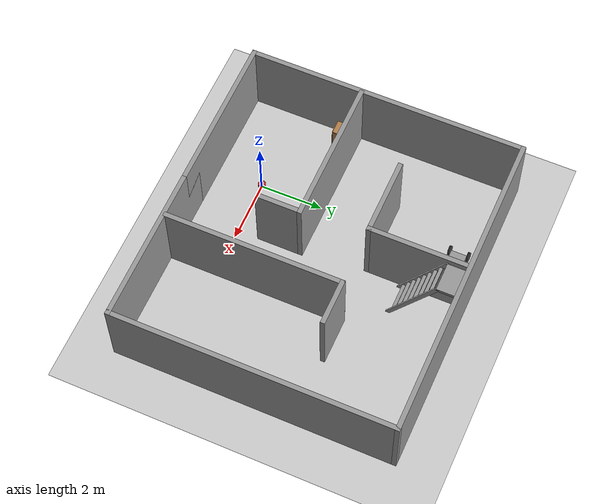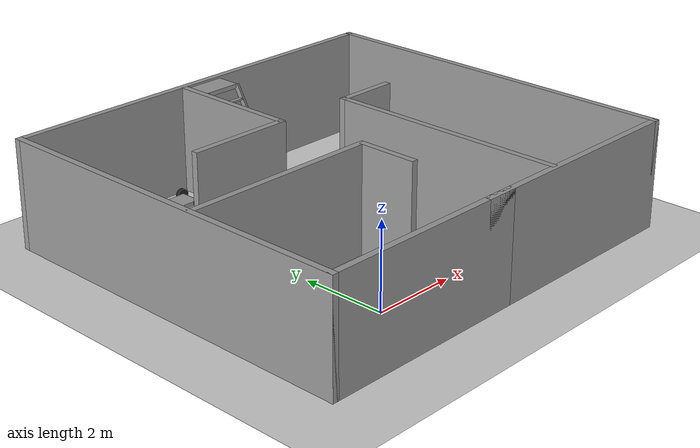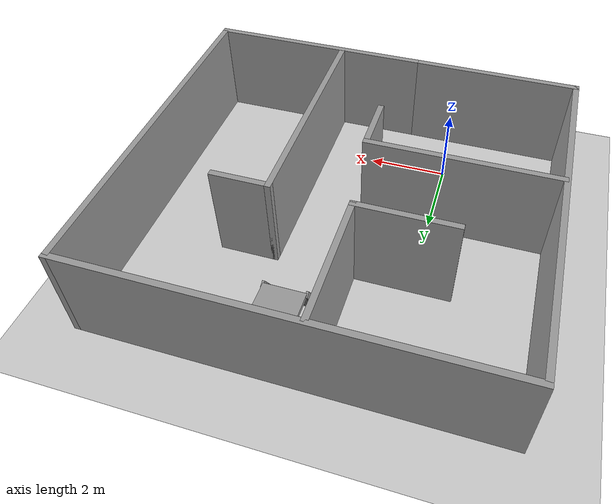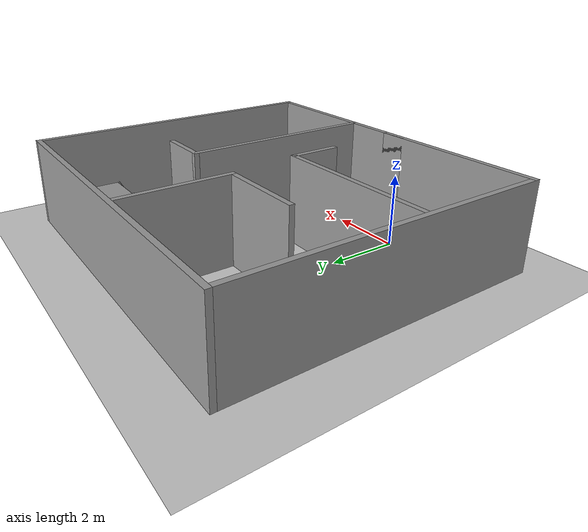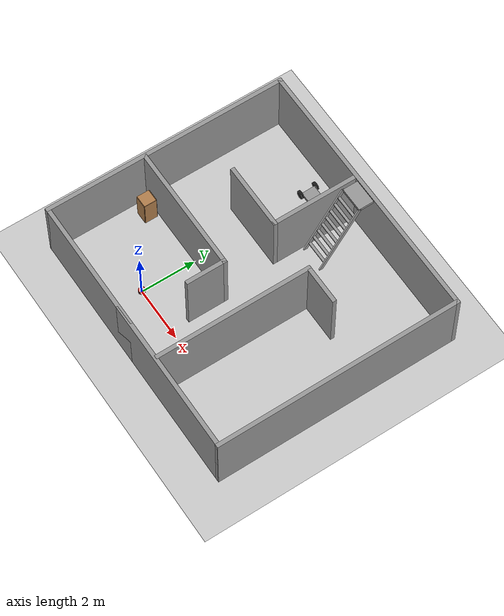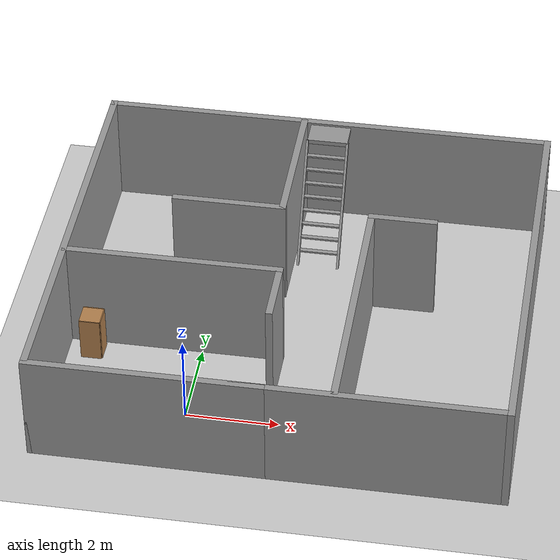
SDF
<sdf version="1.7">
 <world name="default">
  <light name="sun" type="directional">
   <pose>0 0 10 0 -0 0</pose>
   <diffuse>0.8 0.8 0.8 1</diffuse>
   <specular>0.2 0.2 0.2 1</specular>
   <attenuation>
    <range>1000</range>
    <constant>0.9</constant>
    <linear>0.01</linear>
    <quadratic>0.001</quadratic>
   </attenuation>
   <direction>-0.5 0.1 -0.9</direction>
   <spot><inner_angle>0</inner_angle><outer_angle>0</outer_angle><falloff>0</falloff></spot>
  </light>
  <model name="ground_plane">
   <static>1</static>
   <link name="link">
    <collision name="collision">
     <geometry><plane><normal>0 0 1</normal><size>100 100</size></plane></geometry>
     <surface><friction><ode><mu>100</mu><mu2>50</mu2></ode></friction></surface>
    </collision>
    <visual name="visual">
     <cast_shadows>0</cast_shadows>
     <geometry><plane><normal>0 0 1</normal><size>100 100</size></plane></geometry>
     <material>
      <script><uri>file://media/materials/scripts/gazebo.material</uri><name>Gazebo/Grey</name></script>
     </material>
    </visual>
   </link>
  </model>
  <gravity>0 0 -9.8</gravity>
  <magnetic_field>6e-06 2.3e-05 -4.2e-05</magnetic_field>
  <atmosphere type="adiabatic"/>
  <physics type="ode">
   <max_step_size>0.001</max_step_size>
   <real_time_factor>1</real_time_factor>
   <real_time_update_rate>1000</real_time_update_rate>
  </physics>
  <scene><ambient>0.4 0.4 0.4 1</ambient><background>0.7 0.7 0.7 1</background><shadows>1</shadows></scene>
  <audio><device>default</device></audio>
  <spherical_coordinates>
   <surface_model>EARTH_WGS84</surface_model>
   <latitude_deg>0</latitude_deg>
   <longitude_deg>0</longitude_deg>
   <elevation>0</elevation>
   <heading_deg>0</heading_deg>
  </spherical_coordinates>
  <model name="room">
   <pose>1.96627 2.88471 0 0 -0 0</pose>
   <link name="Wall_0">
    <collision name="Wall_0_Collision">
     <geometry><box><size>5.75 0.15 2.5</size></box></geometry>
     <pose>0 0 1.25 0 -0 0</pose>
    </collision>
    <visual name="Wall_0_Visual">
     <pose>0 0 1.25 0 -0 0</pose>
     <geometry><box><size>5.75 0.15 2.5</size></box></geometry>
     <material>
      <script><uri>file://media/materials/scripts/gazebo.material</uri><name>Gazebo/Grey</name></script>
      <ambient>1 1 1 1</ambient>
     </material>
     <meta><layer>0</layer></meta>
    </visual>
    <pose>2.125 -4.425 0 0 -0 0</pose>
   </link>
   <link name="Wall_1">
    <collision name="Wall_1_Collision">
     <geometry><box><size>9 0.15 2.5</size></box></geometry>
     <pose>0 0 1.25 0 -0 0</pose>
    </collision>
    <visual name="Wall_1_Visual">
     <pose>0 0 1.25 0 -0 0</pose>
     <geometry><box><size>9 0.15 2.5</size></box></geometry>
     <material>
      <script><uri>file://media/materials/scripts/gazebo.material</uri><name>Gazebo/Grey</name></script>
      <ambient>1 1 1 1</ambient>
     </material>
     <meta><layer>0</layer></meta>
    </visual>
    <pose>4.925 -0 0 0 -0 1.5708</pose>
   </link>
   <link name="Wall_10">
    <collision name="Wall_10_Collision">
     <geometry><box><size>1.5 0.15 2.5</size></box></geometry>
     <pose>0 0 1.25 0 -0 0</pose>
    </collision>
    <visual name="Wall_10_Visual">
     <pose>0 0 1.25 0 -0 0</pose>
     <geometry><box><size>1.5 0.15 2.5</size></box></geometry>
     <material>
      <script><uri>file://media/materials/scripts/gazebo.material</uri><name>Gazebo/Grey</name></script>
      <ambient>1 1 1 1</ambient>
     </material>
     <meta><layer>0</layer></meta>
    </visual>
    <pose>-0.274674 -1.47923 0 0 -0 -1.5708</pose>
   </link>
   <link name="Wall_12">
    <collision name="Wall_12_Collision">
     <geometry><box><size>5.75 0.15 2.5</size></box></geometry>
     <pose>0 0 1.25 0 -0 0</pose>
    </collision>
    <visual name="Wall_12_Visual">
     <pose>0 0 1.25 0 -0 0</pose>
     <geometry><box><size>5.75 0.15 2.5</size></box></geometry>
     <material>
      <script><uri>file://media/materials/scripts/gazebo.material</uri><name>Gazebo/Grey</name></script>
      <ambient>1 1 1 1</ambient>
     </material>
     <meta><layer>0</layer></meta>
    </visual>
    <pose>1.39594 -1.54099 0 0 -0 -1.5708</pose>
   </link>
   <link name="Wall_14">
    <collision name="Wall_14_Collision">
     <geometry><box><size>1.5 0.15 2.5</size></box></geometry>
     <pose>0 0 1.25 0 -0 0</pose>
    </collision>
    <visual name="Wall_14_Visual">
     <pose>0 0 1.25 0 -0 0</pose>
     <geometry><box><size>1.5 0.15 2.5</size></box></geometry>
     <material>
      <script><uri>file://media/materials/scripts/gazebo.material</uri><name>Gazebo/Grey</name></script>
      <ambient>1 1 1 1</ambient>
     </material>
     <meta><layer>0</layer></meta>
    </visual>
    <pose>2.07094 1.25901 0 0 -0 0</pose>
   </link>
   <link name="Wall_2">
    <collision name="Wall_2_Collision">
     <geometry><box><size>10 0.15 2.5</size></box></geometry>
     <pose>0 0 1.25 0 -0 0</pose>
    </collision>
    <visual name="Wall_2_Visual">
     <pose>0 0 1.25 0 -0 0</pose>
     <geometry><box><size>10 0.15 2.5</size></box></geometry>
     <material>
      <script><uri>file://media/materials/scripts/gazebo.material</uri><name>Gazebo/Grey</name></script>
      <ambient>1 1 1 1</ambient>
     </material>
     <meta><layer>0</layer></meta>
    </visual>
    <pose>0 4.425 0 0 -0 3.14159</pose>
   </link>
   <link name="Wall_3">
    <collision name="Wall_3_Collision">
     <geometry><box><size>9 0.15 2.5</size></box></geometry>
     <pose>0 0 1.25 0 -0 0</pose>
    </collision>
    <visual name="Wall_3_Visual">
     <pose>0 0 1.25 0 -0 0</pose>
     <geometry><box><size>9 0.15 2.5</size></box></geometry>
     <material>
      <script><uri>file://media/materials/scripts/gazebo.material</uri><name>Gazebo/Grey</name></script>
      <ambient>1 1 1 1</ambient>
     </material>
     <meta><layer>0</layer></meta>
    </visual>
    <pose>-4.925 -0 0 0 -0 -1.5708</pose>
   </link>
   <link name="Wall_4">
    <collision name="Wall_4_Collision">
     <geometry><box><size>5 0.15 2.5</size></box></geometry>
     <pose>0 0 1.25 0 -0 0</pose>
    </collision>
    <visual name="Wall_4_Visual">
     <pose>0 0 1.25 0 -0 0</pose>
     <geometry><box><size>5 0.15 2.5</size></box></geometry>
     <material>
      <script><uri>file://media/materials/scripts/gazebo.material</uri><name>Gazebo/Grey</name></script>
      <ambient>1 1 1 1</ambient>
     </material>
     <meta><layer>0</layer></meta>
    </visual>
    <pose>-2.5 -4.425 0 0 -0 0</pose>
   </link>
   <link name="Wall_6">
    <collision name="Wall_6_Collision">
     <geometry><box><size>3.25 0.15 2.5</size></box></geometry>
     <pose>0 0 1.25 0 -0 0</pose>
    </collision>
    <visual name="Wall_6_Visual">
     <pose>0 0 1.25 0 -0 0</pose>
     <geometry><box><size>3.25 0.15 2.5</size></box></geometry>
     <material>
      <script><uri>file://media/materials/scripts/gazebo.material</uri><name>Gazebo/Grey</name></script>
      <ambient>1 1 1 1</ambient>
     </material>
     <meta><layer>0</layer></meta>
    </visual>
    <pose>-0.545927 2.82409 0 0 -0 -1.5708</pose>
   </link>
   <link name="Wall_7">
    <collision name="Wall_7_Collision">
     <geometry><box><size>2.5 0.15 2.5</size></box></geometry>
     <pose>0 0 1.25 0 -0 0</pose>
    </collision>
    <visual name="Wall_7_Visual">
     <pose>0 0 1.25 0 -0 0</pose>
     <geometry><box><size>2.5 0.15 2.5</size></box></geometry>
     <material>
      <script><uri>file://media/materials/scripts/gazebo.material</uri><name>Gazebo/Grey</name></script>
      <ambient>1 1 1 1</ambient>
     </material>
     <meta><layer>0</layer></meta>
    </visual>
    <pose>-1.72093 1.27409 0 0 -0 3.14159</pose>
   </link>
   <link name="Wall_9">
    <collision name="Wall_9_Collision">
     <geometry><box><size>4.75 0.15 2.5</size></box></geometry>
     <pose>0 0 1.25 0 -0 0</pose>
    </collision>
    <visual name="Wall_9_Visual">
     <pose>0 0 1.25 0 -0 0</pose>
     <geometry><box><size>4.75 0.15 2.5</size></box></geometry>
     <material>
      <script><uri>file://media/materials/scripts/gazebo.material</uri><name>Gazebo/Grey</name></script>
      <ambient>1 1 1 1</ambient>
     </material>
     <meta><layer>0</layer></meta>
    </visual>
    <pose>-2.57467 -0.804225 0 0 -0 0</pose>
   </link>
   <static>1</static>
  </model>
  <model name="fishbot">
   <link name="base_footprint">
    <inertial>
     <pose>0.006897 0 0.099172 0 -0 0</pose>
     <mass>1.45</mass>
     <inertia>
      <ixx>0.00774191</ixx>
      <ixy>0</ixy>
      <ixz>-0.000478276</ixz>
      <iyy>0.00923295</iyy>
      <iyz>0</iyz>
      <izz>0.00669627</izz>
     </inertia>
    </inertial>
    <collision name="base_footprint_fixed_joint_lump__base_link_collision">
     <pose>0 0 0.082 0 -0 0</pose>
     <geometry><cylinder><length>0.12</length><radius>0.12</radius></cylinder></geometry>
    </collision>
    <collision name="base_footprint_fixed_joint_lump__back_caster_link_collision_1">
     <pose>-0.08 0 0.006 1.57079 -0 0</pose>
     <geometry><sphere><radius>0.016</radius></sphere></geometry>
     <surface>
      <contact><ode><kp>1e+09</kp><kd>1</kd></ode></contact>
      <friction><ode><mu>0</mu><mu2>0</mu2></ode></friction>
     </surface>
    </collision>
    <collision name="base_footprint_fixed_joint_lump__camera_link_collision_2">
     <pose>0.1 0 0.147 0 -0 0</pose>
     <geometry><box><size>0.02 0.1 0.02</size></box></geometry>
    </collision>
    <collision name="base_footprint_fixed_joint_lump__front_caster_link_collision_3">
     <pose>0.08 0 0.006 1.57079 -0 0</pose>
     <geometry><sphere><radius>0.016</radius></sphere></geometry>
     <surface>
      <contact><ode><kp>1e+09</kp><kd>1</kd></ode></contact>
      <friction><ode><mu>0</mu><mu2>0</mu2></ode></friction>
     </surface>
    </collision>
    <collision name="base_footprint_fixed_joint_lump__imu_link_collision_4">
     <pose>0 0 0.102 0 -0 0</pose>
     <geometry><box><size>0.02 0.02 0.02</size></box></geometry>
    </collision>
    <collision name="base_footprint_fixed_joint_lump__laser_cylinder_link_collision_5">
     <pose>0 0 0.182 0 -0 0</pose>
     <geometry><cylinder><length>0.1</length><radius>0.01</radius></cylinder></geometry>
    </collision>
    <collision name="base_footprint_fixed_joint_lump__laser_link_collision_6">
     <pose>0 0 0.232 0 -0 0</pose>
     <geometry><cylinder><length>0.02</length><radius>0.02</radius></cylinder></geometry>
    </collision>
    <visual name="base_footprint_fixed_joint_lump__base_link_visual">
     <pose>0 0 0.082 0 -0 0</pose>
     <geometry><cylinder><length>0.12</length><radius>0.12</radius></cylinder></geometry>
     <material>
      <script><name>Gazebo/Red</name><uri>file://media/materials/scripts/gazebo.material</uri></script>
     </material>
    </visual>
    <visual name="base_footprint_fixed_joint_lump__back_caster_link_visual_1">
     <pose>-0.08 0 0.006 1.57079 -0 0</pose>
     <geometry><sphere><radius>0.016</radius></sphere></geometry>
    </visual>
    <visual name="base_footprint_fixed_joint_lump__camera_link_visual_2">
     <pose>0.1 0 0.147 0 -0 0</pose>
     <geometry><box><size>0.02 0.1 0.02</size></box></geometry>
    </visual>
    <visual name="base_footprint_fixed_joint_lump__front_caster_link_visual_3">
     <pose>0.08 0 0.006 1.57079 -0 0</pose>
     <geometry><sphere><radius>0.016</radius></sphere></geometry>
    </visual>
    <visual name="base_footprint_fixed_joint_lump__imu_link_visual_4">
     <pose>0 0 0.102 0 -0 0</pose>
     <geometry><box><size>0.02 0.02 0.02</size></box></geometry>
    </visual>
    <visual name="base_footprint_fixed_joint_lump__laser_cylinder_link_visual_5">
     <pose>0 0 0.182 0 -0 0</pose>
     <geometry><cylinder><length>0.1</length><radius>0.01</radius></cylinder></geometry>
     <material>
      <script><name>Gazebo/Black</name><uri>file://media/materials/scripts/gazebo.material</uri></script>
     </material>
    </visual>
    <visual name="base_footprint_fixed_joint_lump__laser_link_visual_6">
     <pose>0 0 0.232 0 -0 0</pose>
     <geometry><cylinder><length>0.02</length><radius>0.02</radius></cylinder></geometry>
     <material>
      <script><name>Gazebo/Black</name><uri>file://media/materials/scripts/gazebo.material</uri></script>
     </material>
    </visual>
    <sensor name="camera_sensor" type="depth">
     <plugin name="depth_camera" filename="libgazebo_ros_camera.so">
      <frame_name>camera_optical_link</frame_name>
     </plugin>
     <always_on>1</always_on>
     <update_rate>10</update_rate>
     <camera name="camera">
      <horizontal_fov>1.50098</horizontal_fov>
      <image><width>800</width><height>600</height><format>R8G8B8</format></image>
      <distortion><k1>0</k1><k2>0</k2><k3>0</k3><p1>0</p1><p2>0</p2><center>0.5 0.5</center></distortion>
      <clip><near>0.1</near><far>100</far></clip>
     </camera>
     <pose>0.1 0 0.147 0 -0 0</pose>
    </sensor>
    <sensor name="imu_sensor" type="imu">
     <plugin name="imu_plugin" filename="libgazebo_ros_imu_sensor.so">
      <ros><namespace>/</namespace><remapping>~/out:=imu</remapping></ros>
      <initial_orientation_as_reference>0</initial_orientation_as_reference>
     </plugin>
     <update_rate>100</update_rate>
     <always_on>1</always_on>
     <imu>
      <angular_velocity>
       <x>
        <noise type="gaussian">
         <mean>0</mean>
         <stddev>0.0002</stddev>
         <bias_mean>7.5e-06</bias_mean>
         <bias_stddev>8e-07</bias_stddev>
        </noise>
       </x>
       <y>
        <noise type="gaussian">
         <mean>0</mean>
         <stddev>0.0002</stddev>
         <bias_mean>7.5e-06</bias_mean>
         <bias_stddev>8e-07</bias_stddev>
        </noise>
       </y>
       <z>
        <noise type="gaussian">
         <mean>0</mean>
         <stddev>0.0002</stddev>
         <bias_mean>7.5e-06</bias_mean>
         <bias_stddev>8e-07</bias_stddev>
        </noise>
       </z>
      </angular_velocity>
      <linear_acceleration>
       <x>
        <noise type="gaussian">
         <mean>0</mean>
         <stddev>0.017</stddev>
         <bias_mean>0.1</bias_mean>
         <bias_stddev>0.001</bias_stddev>
        </noise>
       </x>
       <y>
        <noise type="gaussian">
         <mean>0</mean>
         <stddev>0.017</stddev>
         <bias_mean>0.1</bias_mean>
         <bias_stddev>0.001</bias_stddev>
        </noise>
       </y>
       <z>
        <noise type="gaussian">
         <mean>0</mean>
         <stddev>0.017</stddev>
         <bias_mean>0.1</bias_mean>
         <bias_stddev>0.001</bias_stddev>
        </noise>
       </z>
      </linear_acceleration>
     </imu>
     <pose>0 0 0.102 0 -0 0</pose>
    </sensor>
    <sensor name="laserscan" type="ray">
     <plugin name="laserscan" filename="libgazebo_ros_ray_sensor.so">
      <ros><namespace>/</namespace><remapping>~/out:=scan</remapping></ros>
      <output_type>sensor_msgs/LaserScan</output_type>
      <frame_name>laser_link</frame_name>
     </plugin>
     <always_on>1</always_on>
     <visualize>1</visualize>
     <update_rate>5</update_rate>
     <ray>
      <scan>
       <horizontal>
        <samples>360</samples>
        <resolution>1</resolution>
        <min_angle>0</min_angle>
        <max_angle>6.28</max_angle>
       </horizontal>
       <vertical><samples>1</samples><min_angle>0</min_angle><max_angle>0</max_angle></vertical>
      </scan>
      <range><min>0.12</min><max>8</max><resolution>0.015</resolution></range>
      <noise><type>gaussian</type><mean>0</mean><stddev>0.01</stddev></noise>
     </ray>
     <pose>0 0 0.232 0 -0 0</pose>
    </sensor>
   </link>
   <joint name="left_wheel_joint" type="revolute">
    <pose relative_to="base_footprint">0 0.1 0.022 0 -0 0</pose>
    <parent>base_footprint</parent>
    <child>left_wheel_link</child>
    <axis>
     <xyz>0 1 0</xyz>
     <limit><lower>-1e+16</lower><upper>1e+16</upper></limit>
     <dynamics><spring_reference>0</spring_reference><spring_stiffness>0</spring_stiffness></dynamics>
    </axis>
   </joint>
   <link name="left_wheel_link">
    <pose relative_to="left_wheel_joint">0 0 0 0 -0 0</pose>
    <inertial>
     <mass>0.05</mass>
     <inertia>
      <ixx>1.94667e-05</ixx>
      <ixy>0</ixy>
      <ixz>0</ixz>
      <iyy>1.94667e-05</iyy>
      <iyz>0</iyz>
      <izz>2.56e-05</izz>
     </inertia>
    </inertial>
    <collision name="left_wheel_link_collision">
     <pose>0 0 0 1.57079 -0 0</pose>
     <geometry><cylinder><length>0.04</length><radius>0.032</radius></cylinder></geometry>
     <surface>
      <contact><ode><kp>1e+08</kp><kd>2</kd></ode></contact>
      <friction><ode><mu>20</mu><mu2>20</mu2></ode></friction>
     </surface>
    </collision>
    <visual name="left_wheel_link_visual">
     <pose>0 0 0 1.57079 -0 0</pose>
     <geometry><cylinder><length>0.04</length><radius>0.032</radius></cylinder></geometry>
    </visual>
   </link>
   <joint name="right_wheel_joint" type="revolute">
    <pose relative_to="base_footprint">0 -0.1 0.022 0 -0 0</pose>
    <parent>base_footprint</parent>
    <child>right_wheel_link</child>
    <axis>
     <xyz>0 1 0</xyz>
     <limit><lower>-1e+16</lower><upper>1e+16</upper></limit>
     <dynamics><spring_reference>0</spring_reference><spring_stiffness>0</spring_stiffness></dynamics>
    </axis>
   </joint>
   <link name="right_wheel_link">
    <pose relative_to="right_wheel_joint">0 0 0 0 -0 0</pose>
    <inertial>
     <mass>0.05</mass>
     <inertia>
      <ixx>1.94667e-05</ixx>
      <ixy>0</ixy>
      <ixz>0</ixz>
      <iyy>1.94667e-05</iyy>
      <iyz>0</iyz>
      <izz>2.56e-05</izz>
     </inertia>
    </inertial>
    <collision name="right_wheel_link_collision">
     <pose>0 0 0 1.57079 -0 0</pose>
     <geometry><cylinder><length>0.04</length><radius>0.032</radius></cylinder></geometry>
     <surface>
      <contact><ode><kp>1e+08</kp><kd>2</kd></ode></contact>
      <friction><ode><mu>20</mu><mu2>20</mu2></ode></friction>
     </surface>
    </collision>
    <visual name="right_wheel_link_visual">
     <pose>0 0 0 1.57079 -0 0</pose>
     <geometry><cylinder><length>0.04</length><radius>0.032</radius></cylinder></geometry>
    </visual>
   </link>
   <static>0</static>
   <plugin name="gazebo_ros2_control" filename="libgazebo_ros2_control.so">
    <parameters>/home/ts/chapt7/chapt7_ws/install/fishbot_description/share/fishbot_description/config/fishbot_ros2_controller.yaml</parameters>
    <ros>
     <remapping>/fishbot_diff_drive_controller/odom:=/odom</remapping>
     <remapping>/fishbot_diff_drive_controller/cmd_vel_unstamped:=/cmd_vel</remapping>
    </ros>
   </plugin>
   <pose>6.3e-05 -9.4e-05 0.01 1e-06 -0 -0.000248</pose>
  </model>
  <model name="cabinet">
   <static>1</static>
   <link name="cabinet_bottom_plate">
    <inertial>
     <pose>0 0 -1 0 -0 0</pose>
     <inertia><ixx>2.05</ixx><ixy>0</ixy><ixz>0</ixz><iyy>2.05</iyy><iyz>0</iyz><izz>2.05</izz></inertia>
     <mass>25</mass>
    </inertial>
    <collision name="cabinet_bottom_plate_geom">
     <pose>0 0 0.01 0 -0 0</pose>
     <geometry><box><size>0.45 0.45 0.02</size></box></geometry>
    </collision>
    <visual name="cabinet_bottom_plate_geom_visual">
     <pose>0 0 0.01 0 -0 0</pose>
     <geometry><box><size>0.45 0.45 0.02</size></box></geometry>
     <material>
      <script><uri>file://media/materials/scripts/gazebo.material</uri><name>Gazebo/Wood</name></script>
     </material>
    </visual>
    <collision name="cabinet_bottom_plate_geom_cabinet_back_plate">
     <pose>0.235 0 0.51 0 -0 0</pose>
     <geometry><box><size>0.02 0.45 1.02</size></box></geometry>
    </collision>
    <visual name="cabinet_bottom_plate_geom_cabinet_back_plate_visual">
     <pose>0.235 0 0.51 0 -0 0</pose>
     <geometry><box><size>0.02 0.45 1.02</size></box></geometry>
     <material>
      <script><uri>file://media/materials/scripts/gazebo.material</uri><name>Gazebo/Wood</name></script>
     </material>
    </visual>
    <collision name="cabinet_bottom_plate_geom_cabinet_left_plate">
     <pose>0 0.235 0.51 0 -0 0</pose>
     <geometry><box><size>0.45 0.02 1.02</size></box></geometry>
    </collision>
    <visual name="cabinet_bottom_plate_geom_cabinet_left_plate_visual">
     <pose>0 0.235 0.51 0 -0 0</pose>
     <geometry><box><size>0.45 0.02 1.02</size></box></geometry>
     <material>
      <script><uri>file://media/materials/scripts/gazebo.material</uri><name>Gazebo/Wood</name></script>
     </material>
    </visual>
    <collision name="cabinet_bottom_plate_geom_cabinet_middle_plate">
     <pose>0 0 0.51 0 -0 0</pose>
     <geometry><box><size>0.45 0.45 0.02</size></box></geometry>
    </collision>
    <visual name="cabinet_bottom_plate_geom_cabinet_middle_plate_visual">
     <pose>0 0 0.51 0 -0 0</pose>
     <geometry><box><size>0.45 0.45 0.02</size></box></geometry>
     <material>
      <script><uri>file://media/materials/scripts/gazebo.material</uri><name>Gazebo/Wood</name></script>
     </material>
    </visual>
    <collision name="cabinet_bottom_plate_geom_cabinet_right_plate">
     <pose>0 -0.235 0.51 0 -0 0</pose>
     <geometry><box><size>0.45 0.02 1.02</size></box></geometry>
    </collision>
    <visual name="cabinet_bottom_plate_geom_cabinet_right_plate_visual">
     <pose>0 -0.235 0.51 0 -0 0</pose>
     <geometry><box><size>0.45 0.02 1.02</size></box></geometry>
     <material>
      <script><uri>file://media/materials/scripts/gazebo.material</uri><name>Gazebo/Wood</name></script>
     </material>
    </visual>
    <collision name="cabinet_bottom_plate_geom_cabinet_top_plate">
     <pose>0 0 1.01 0 -0 0</pose>
     <geometry><box><size>0.45 0.45 0.02</size></box></geometry>
    </collision>
    <visual name="cabinet_bottom_plate_geom_cabinet_top_plate_visual">
     <pose>0 0 1.01 0 -0 0</pose>
     <geometry><box><size>0.45 0.45 0.02</size></box></geometry>
     <material>
      <script><uri>file://media/materials/scripts/gazebo.material</uri><name>Gazebo/Wood</name></script>
     </material>
    </visual>
   </link>
   <pose>-2.34647 1.70037 0 0 -0 0</pose>
  </model>
  <model name="cart_rigid_suspension">
   <link name="chassis">
    <pose>0 0 0.15 0 -0 0</pose>
    <inertial>
     <pose>0.1 0 0 0 -0 0</pose>
     <mass>10</mass>
     <inertia>
      <ixx>0.216667</ixx>
      <iyy>0.841667</iyy>
      <izz>1.04167</izz>
      <ixy>0</ixy>
      <ixz>0</ixz>
      <iyz>0</iyz>
     </inertia>
    </inertial>
    <collision name="collision"><geometry><box><size>1 0.5 0.1</size></box></geometry></collision>
    <visual name="visual">
     <geometry><box><size>1 0.5 0.1</size></box></geometry>
     <material>
      <script><uri>file://media/materials/scripts/gazebo.material</uri><name>Gazebo/Grey</name></script>
     </material>
    </visual>
   </link>
   <link name="wheel_front_left">
    <pose>0.5 0.298 0.15 -1.5708 0 0</pose>
    <inertial>
     <mass>0.5</mass>
     <inertia>
      <ixx>0.00307917</ixx>
      <iyy>0.00307917</iyy>
      <izz>0.005625</izz>
      <ixy>0</ixy>
      <ixz>0</ixz>
      <iyz>0</iyz>
     </inertia>
    </inertial>
    <collision name="collision">
     <geometry><cylinder><radius>0.15</radius><length>0.08</length></cylinder></geometry>
    </collision>
    <visual name="visual">
     <geometry><cylinder><radius>0.15</radius><length>0.08</length></cylinder></geometry>
     <material>
      <script><uri>file://media/materials/scripts/gazebo.material</uri><name>Gazebo/Black</name></script>
     </material>
    </visual>
   </link>
   <joint name="wheel_front_left_spin" type="revolute">
    <parent>chassis</parent>
    <child>wheel_front_left</child>
    <axis>
     <xyz>0 0 1</xyz>
     <limit><lower>-1e+16</lower><upper>1e+16</upper></limit>
     <dynamics><spring_reference>0</spring_reference><spring_stiffness>0</spring_stiffness></dynamics>
    </axis>
   </joint>
   <link name="wheel_front_right">
    <pose>0.5 -0.298 0.15 -1.5708 0 0</pose>
    <inertial>
     <mass>0.5</mass>
     <inertia>
      <ixx>0.00307917</ixx>
      <iyy>0.00307917</iyy>
      <izz>0.005625</izz>
      <ixy>0</ixy>
      <ixz>0</ixz>
      <iyz>0</iyz>
     </inertia>
    </inertial>
    <collision name="collision">
     <geometry><cylinder><radius>0.15</radius><length>0.08</length></cylinder></geometry>
    </collision>
    <visual name="visual">
     <geometry><cylinder><radius>0.15</radius><length>0.08</length></cylinder></geometry>
     <material>
      <script><uri>file://media/materials/scripts/gazebo.material</uri><name>Gazebo/Black</name></script>
     </material>
    </visual>
   </link>
   <joint name="wheel_front_right_spin" type="revolute">
    <parent>chassis</parent>
    <child>wheel_front_right</child>
    <axis>
     <xyz>0 0 1</xyz>
     <limit><lower>-1e+16</lower><upper>1e+16</upper></limit>
     <dynamics><spring_reference>0</spring_reference><spring_stiffness>0</spring_stiffness></dynamics>
    </axis>
   </joint>
   <link name="wheel_rear_left">
    <pose>-0.5 0.298 0.15 -1.5708 0 0</pose>
    <inertial>
     <mass>0.5</mass>
     <inertia>
      <ixx>0.00307917</ixx>
      <iyy>0.00307917</iyy>
      <izz>0.005625</izz>
      <ixy>0</ixy>
      <ixz>0</ixz>
      <iyz>0</iyz>
     </inertia>
    </inertial>
    <collision name="collision">
     <geometry><cylinder><radius>0.15</radius><length>0.08</length></cylinder></geometry>
    </collision>
    <visual name="visual">
     <geometry><cylinder><radius>0.15</radius><length>0.08</length></cylinder></geometry>
     <material>
      <script><uri>file://media/materials/scripts/gazebo.material</uri><name>Gazebo/Black</name></script>
     </material>
    </visual>
   </link>
   <joint name="wheel_rear_left_spin" type="revolute">
    <parent>chassis</parent>
    <child>wheel_rear_left</child>
    <axis>
     <xyz>0 0 1</xyz>
     <limit><lower>-1e+16</lower><upper>1e+16</upper></limit>
     <dynamics><spring_reference>0</spring_reference><spring_stiffness>0</spring_stiffness></dynamics>
    </axis>
   </joint>
   <link name="wheel_rear_right">
    <pose>-0.5 -0.298 0.15 -1.5708 0 0</pose>
    <inertial>
     <mass>0.5</mass>
     <inertia>
      <ixx>0.00307917</ixx>
      <iyy>0.00307917</iyy>
      <izz>0.005625</izz>
      <ixy>0</ixy>
      <ixz>0</ixz>
      <iyz>0</iyz>
     </inertia>
    </inertial>
    <collision name="collision">
     <geometry><cylinder><radius>0.15</radius><length>0.08</length></cylinder></geometry>
    </collision>
    <visual name="visual">
     <geometry><cylinder><radius>0.15</radius><length>0.08</length></cylinder></geometry>
     <material>
      <script><uri>file://media/materials/scripts/gazebo.material</uri><name>Gazebo/Black</name></script>
     </material>
    </visual>
   </link>
   <joint name="wheel_rear_right_spin" type="revolute">
    <parent>chassis</parent>
    <child>wheel_rear_right</child>
    <axis>
     <xyz>0 0 1</xyz>
     <limit><lower>-1e+16</lower><upper>1e+16</upper></limit>
     <dynamics><spring_reference>0</spring_reference><spring_stiffness>0</spring_stiffness></dynamics>
    </axis>
   </joint>
   <pose>0.375502 6.54702 -7e-06 1e-06 -1.4e-05 0.010295</pose>
  </model>
  <model name="ladder_60deg_0rails">
   <static>1</static>
   <link name="step0">
    <pose>0 0.15396 0.266667 0 -0 0</pose>
    <inertial>
     <mass>9.75482</mass>
     <inertia>
      <ixx>0.00957124</ixx>
      <iyy>0.65963</iyy>
      <izz>0.666842</izz>
      <ixy>0</ixy>
      <ixz>0</ixz>
      <iyz>0</iyz>
     </inertia>
    </inertial>
    <collision name="collision"><geometry><box><size>0.9 0.1016 0.0381</size></box></geometry></collision>
    <visual name="visual">
     <geometry><box><size>0.9 0.1016 0.0381</size></box></geometry>
     <material>
      <script><uri>file://media/materials/scripts/gazebo.material</uri><name>Gazebo/Grey</name></script>
     </material>
    </visual>
   </link>
   <link name="step1">
    <pose>0 0.30792 0.533333 0 -0 0</pose>
    <inertial>
     <mass>9.75482</mass>
     <inertia>
      <ixx>0.00957124</ixx>
      <iyy>0.65963</iyy>
      <izz>0.666842</izz>
      <ixy>0</ixy>
      <ixz>0</ixz>
      <iyz>0</iyz>
     </inertia>
    </inertial>
    <collision name="collision"><geometry><box><size>0.9 0.1016 0.0381</size></box></geometry></collision>
    <visual name="visual">
     <geometry><box><size>0.9 0.1016 0.0381</size></box></geometry>
     <material>
      <script><uri>file://media/materials/scripts/gazebo.material</uri><name>Gazebo/Grey</name></script>
     </material>
    </visual>
   </link>
   <link name="step2">
    <pose>0 0.46188 0.8 0 -0 0</pose>
    <inertial>
     <mass>9.75482</mass>
     <inertia>
      <ixx>0.00957124</ixx>
      <iyy>0.65963</iyy>
      <izz>0.666842</izz>
      <ixy>0</ixy>
      <ixz>0</ixz>
      <iyz>0</iyz>
     </inertia>
    </inertial>
    <collision name="collision"><geometry><box><size>0.9 0.1016 0.0381</size></box></geometry></collision>
    <visual name="visual">
     <geometry><box><size>0.9 0.1016 0.0381</size></box></geometry>
     <material>
      <script><uri>file://media/materials/scripts/gazebo.material</uri><name>Gazebo/Grey</name></script>
     </material>
    </visual>
   </link>
   <link name="step3">
    <pose>0 0.61584 1.06667 0 -0 0</pose>
    <inertial>
     <mass>9.75482</mass>
     <inertia>
      <ixx>0.00957124</ixx>
      <iyy>0.65963</iyy>
      <izz>0.666842</izz>
      <ixy>0</ixy>
      <ixz>0</ixz>
      <iyz>0</iyz>
     </inertia>
    </inertial>
    <collision name="collision"><geometry><box><size>0.9 0.1016 0.0381</size></box></geometry></collision>
    <visual name="visual">
     <geometry><box><size>0.9 0.1016 0.0381</size></box></geometry>
     <material>
      <script><uri>file://media/materials/scripts/gazebo.material</uri><name>Gazebo/Grey</name></script>
     </material>
    </visual>
   </link>
   <link name="step4">
    <pose>0 0.7698 1.33333 0 -0 0</pose>
    <inertial>
     <mass>9.75482</mass>
     <inertia>
      <ixx>0.00957124</ixx>
      <iyy>0.65963</iyy>
      <izz>0.666842</izz>
      <ixy>0</ixy>
      <ixz>0</ixz>
      <iyz>0</iyz>
     </inertia>
    </inertial>
    <collision name="collision"><geometry><box><size>0.9 0.1016 0.0381</size></box></geometry></collision>
    <visual name="visual">
     <geometry><box><size>0.9 0.1016 0.0381</size></box></geometry>
     <material>
      <script><uri>file://media/materials/scripts/gazebo.material</uri><name>Gazebo/Grey</name></script>
     </material>
    </visual>
   </link>
   <link name="step5">
    <pose>0 0.92376 1.6 0 -0 0</pose>
    <inertial>
     <mass>9.75482</mass>
     <inertia>
      <ixx>0.00957124</ixx>
      <iyy>0.65963</iyy>
      <izz>0.666842</izz>
      <ixy>0</ixy>
      <ixz>0</ixz>
      <iyz>0</iyz>
     </inertia>
    </inertial>
    <collision name="collision"><geometry><box><size>0.9 0.1016 0.0381</size></box></geometry></collision>
    <visual name="visual">
     <geometry><box><size>0.9 0.1016 0.0381</size></box></geometry>
     <material>
      <script><uri>file://media/materials/scripts/gazebo.material</uri><name>Gazebo/Grey</name></script>
     </material>
    </visual>
   </link>
   <link name="step6">
    <pose>0 1.07772 1.86667 0 -0 0</pose>
    <inertial>
     <mass>9.75482</mass>
     <inertia>
      <ixx>0.00957124</ixx>
      <iyy>0.65963</iyy>
      <izz>0.666842</izz>
      <ixy>0</ixy>
      <ixz>0</ixz>
      <iyz>0</iyz>
     </inertia>
    </inertial>
    <collision name="collision"><geometry><box><size>0.9 0.1016 0.0381</size></box></geometry></collision>
    <visual name="visual">
     <geometry><box><size>0.9 0.1016 0.0381</size></box></geometry>
     <material>
      <script><uri>file://media/materials/scripts/gazebo.material</uri><name>Gazebo/Grey</name></script>
     </material>
    </visual>
   </link>
   <link name="step7">
    <pose>0 1.23168 2.13333 0 -0 0</pose>
    <inertial>
     <mass>9.75482</mass>
     <inertia>
      <ixx>0.00957124</ixx>
      <iyy>0.65963</iyy>
      <izz>0.666842</izz>
      <ixy>0</ixy>
      <ixz>0</ixz>
      <iyz>0</iyz>
     </inertia>
    </inertial>
    <collision name="collision"><geometry><box><size>0.9 0.1016 0.0381</size></box></geometry></collision>
    <visual name="visual">
     <geometry><box><size>0.9 0.1016 0.0381</size></box></geometry>
     <material>
      <script><uri>file://media/materials/scripts/gazebo.material</uri><name>Gazebo/Grey</name></script>
     </material>
    </visual>
   </link>
   <link name="landing">
    <pose>0 1.68564 2.4 0 -0 0</pose>
    <inertial>
     <mass>57.6072</mass>
     <inertia><ixx>1.73518</ixx><iyy>3.89545</iyy><izz>5.6167</izz><ixy>0</ixy><ixz>0</ixz><iyz>0</iyz></inertia>
    </inertial>
    <collision name="collision"><geometry><box><size>0.9 0.6 0.1016</size></box></geometry></collision>
    <visual name="visual">
     <geometry><box><size>0.9 0.6 0.1016</size></box></geometry>
     <material>
      <script><uri>file://media/materials/scripts/gazebo.material</uri><name>Gazebo/Grey</name></script>
     </material>
    </visual>
   </link>
   <link name="left_side_wall">
    <pose>-0.45 0.69282 1.2 1.0472 -0 0</pose>
    <collision name="collision"><geometry><box><size>0.0508 2.85128 0.13</size></box></geometry></collision>
    <visual name="visual">
     <geometry><box><size>0.0508 2.85128 0.13</size></box></geometry>
     <material>
      <script><uri>file://media/materials/scripts/gazebo.material</uri><name>Gazebo/Grey</name></script>
     </material>
    </visual>
   </link>
   <link name="right_side_wall">
    <pose>0.45 0.69282 1.2 1.0472 -0 0</pose>
    <collision name="collision"><geometry><box><size>0.0508 2.85128 0.13</size></box></geometry></collision>
    <visual name="visual">
     <geometry><box><size>0.0508 2.85128 0.13</size></box></geometry>
     <material>
      <script><uri>file://media/materials/scripts/gazebo.material</uri><name>Gazebo/Grey</name></script>
     </material>
    </visual>
   </link>
   <pose>2.03204 5.28112 0 0 -0 0</pose>
  </model>
 </world>
</sdf>
